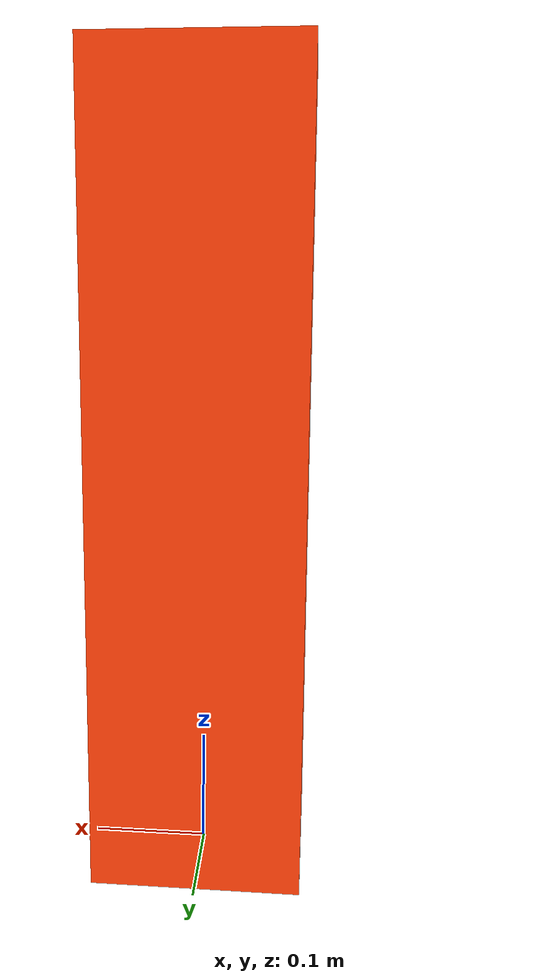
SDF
<?xml version="1.0"?>
<sdf version="1.9">
  <model name="trajectory_test_obstacle">
    <static>true</static>
    <link name="wall">
      <collision name="collision">
        <pose>0 0 0.35 0 0 0</pose>
        <geometry>
          <box><size>0.18 0.18 0.70</size></box>
        </geometry>
      </collision>
      <visual name="visual">
        <pose>0 0 0.35 0 0 0</pose>
        <geometry>
          <box><size>0.18 0.18 0.70</size></box>
        </geometry>
        <material>
          <ambient>0.80 0.16 0.02 1</ambient>
          <diffuse>1.00 0.25 0.03 1</diffuse>
          <specular>0.15 0.15 0.15 1</specular>
        </material>
      </visual>
    </link>
  </model>
</sdf>
